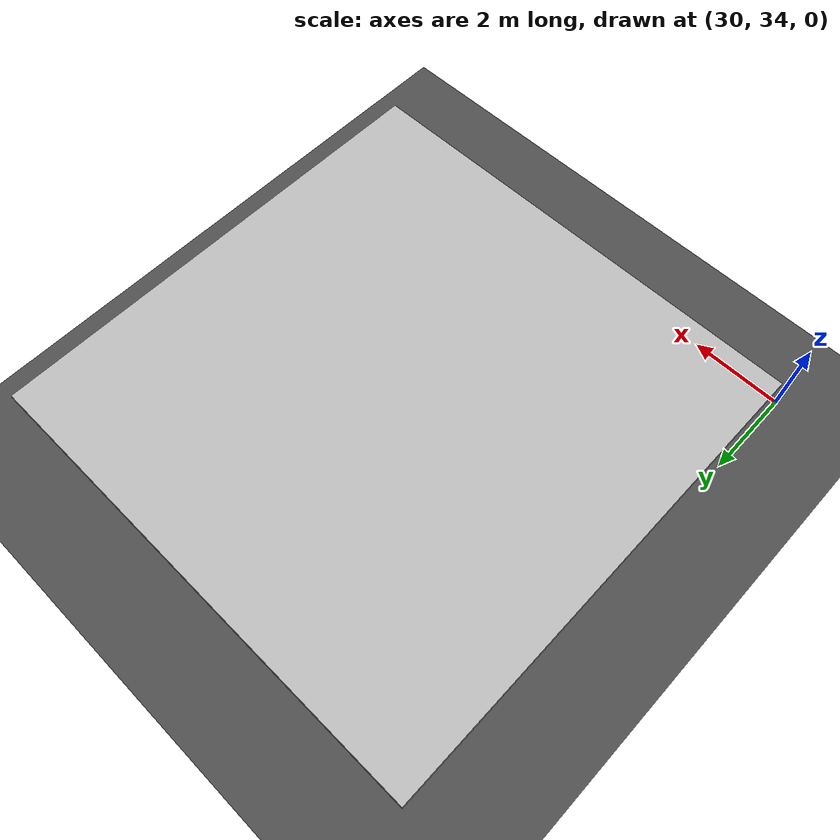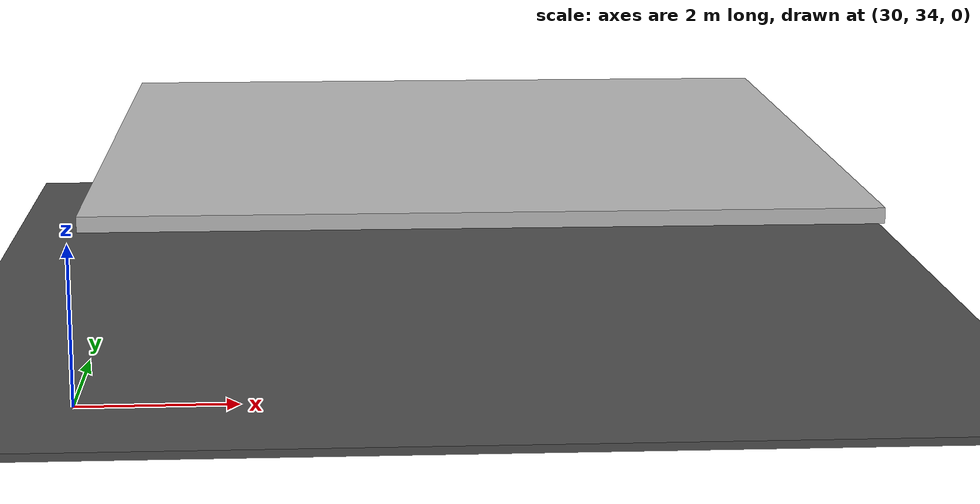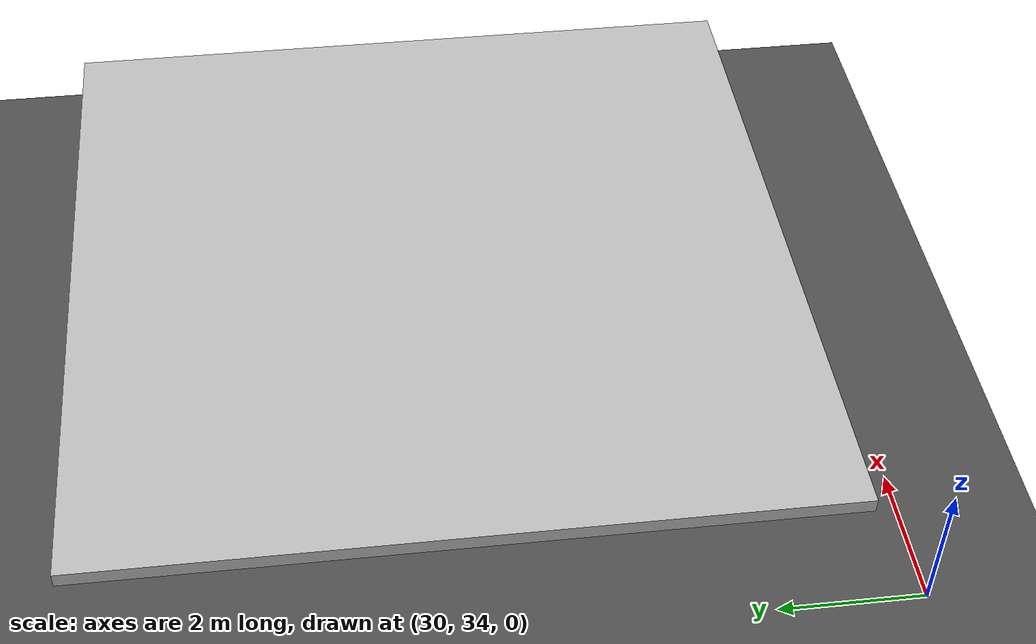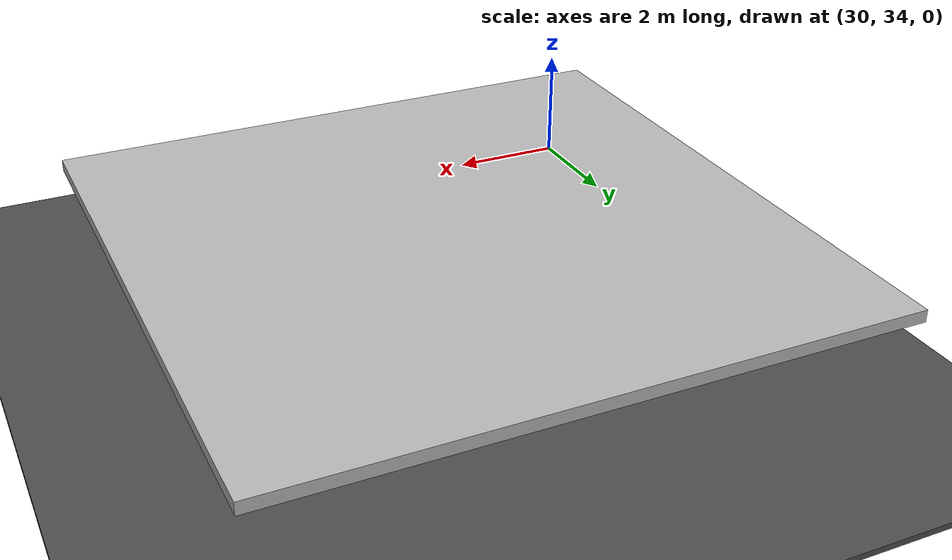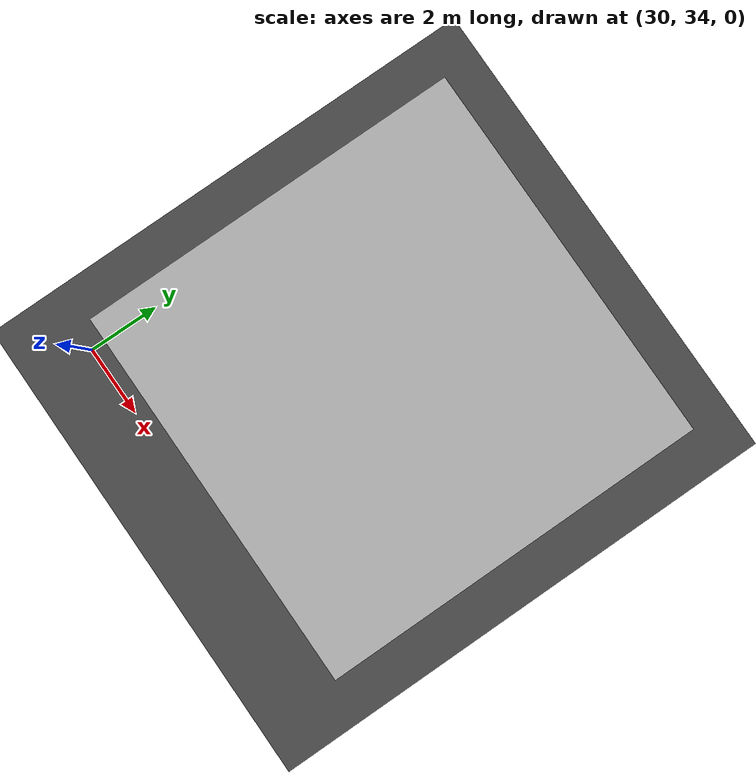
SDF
<sdf version="1.7">
 <world name="default">
  <light name="sun" type="directional">
   <pose>0 0 10 0 -0 0</pose>
   <diffuse>0.8 0.8 0.8 1</diffuse>
   <specular>0.2 0.2 0.2 1</specular>
   <attenuation>
    <range>1000</range>
    <constant>0.9</constant>
    <linear>0.01</linear>
    <quadratic>0.001</quadratic>
   </attenuation>
   <direction>-0.5 0.1 -0.9</direction>
   <spot><inner_angle>0</inner_angle><outer_angle>0</outer_angle><falloff>0</falloff></spot>
  </light>
  <model name="ground_plane">
   <static>1</static>
   <link name="link">
    <collision name="collision">
     <geometry><plane><normal>0 0 1</normal><size>1 1</size></plane></geometry>
     <surface><friction><ode><mu>100</mu><mu2>50</mu2></ode></friction></surface>
    </collision>
    <visual name="visual">
     <cast_shadows>0</cast_shadows>
     <geometry><plane><normal>0 0 1</normal><size>1 1</size></plane></geometry>
     <material>
      <script><uri>file://media/materials/scripts/gazebo.material</uri><name>Gazebo/Grey</name></script>
     </material>
    </visual>
   </link>
  </model>
  <model name="asphalt_plane">
   <static>1</static>
   <link name="link_collision">
    <collision name="collision"><geometry><box><size>200 200 0.1</size></box></geometry></collision>
   </link>
   <link name="link_visual">
    <visual name="visual">
     <cast_shadows>0</cast_shadows>
     <geometry><box><size>2000 2000 0.1</size></box></geometry>
     <material>
      <script>
       <uri>model://asphalt_plane/materials/scripts</uri>
       <uri>model://asphalt_plane/materials/textures</uri>
       <name>vrc/asphalt</name>
      </script>
     </material>
    </visual>
   </link>
   <scale>1 1 1</scale>
  </model>
  <gravity>0 0 -9.8</gravity>
  <magnetic_field>6e-06 2.3e-05 -4.2e-05</magnetic_field>
  <atmosphere type="adiabatic"/>
  <physics type="ode">
   <max_step_size>0.001</max_step_size>
   <real_time_factor>1</real_time_factor>
   <real_time_update_rate>1000</real_time_update_rate>
  </physics>
  <scene><ambient>0.4 0.4 0.4 1</ambient><background>0.7 0.7 0.7 1</background><shadows>1</shadows></scene>
  <spherical_coordinates>
   <surface_model>EARTH_WGS84</surface_model>
   <latitude_deg>0</latitude_deg>
   <longitude_deg>0</longitude_deg>
   <elevation>0</elevation>
   <heading_deg>0</heading_deg>
  </spherical_coordinates>
  <model name="target_true">
   <static>1</static>
   <link name="link_blue">
    <visual name="visual">
     <geometry><mesh><uri>model://target_blue/meshes/target_blue.dae</uri><scale>20 20 20</scale></mesh></geometry>
    </visual>
    <collision name="collision">
     <geometry><mesh><uri>model://target_blue/meshes/target_blue.dae</uri><scale>20 20 20</scale></mesh></geometry>
    </collision>
   </link>
   <pose>40 40 2 0 -1.57 0</pose>
  </model>
  <plugin name="wind_plugin" filename="libgazebo_wind_plugin.so">
   <frameId>base_link</frameId>
   <windVelocityMean>5.0</windVelocityMean>
   <windVelocityMax>8.0</windVelocityMax>
   <windVelocityVariance>2</windVelocityVariance>
   <windDirectionMean>0.0 10.0 0.0</windDirectionMean>
   <windDirectionVariance>0</windDirectionVariance>
   <windGustStart>0</windGustStart>
   <windGustDuration>0</windGustDuration>
   <windGustVelocityMean>0</windGustVelocityMean>
   <windGustVelocityMax>20.0</windGustVelocityMax>
   <windGustVelocityVariance>0</windGustVelocityVariance>
   <windGustDirectionMean>1 0 0</windGustDirectionMean>
   <windGustDirectionVariance>0</windGustDirectionVariance>
  </plugin>
 </world>
</sdf>
